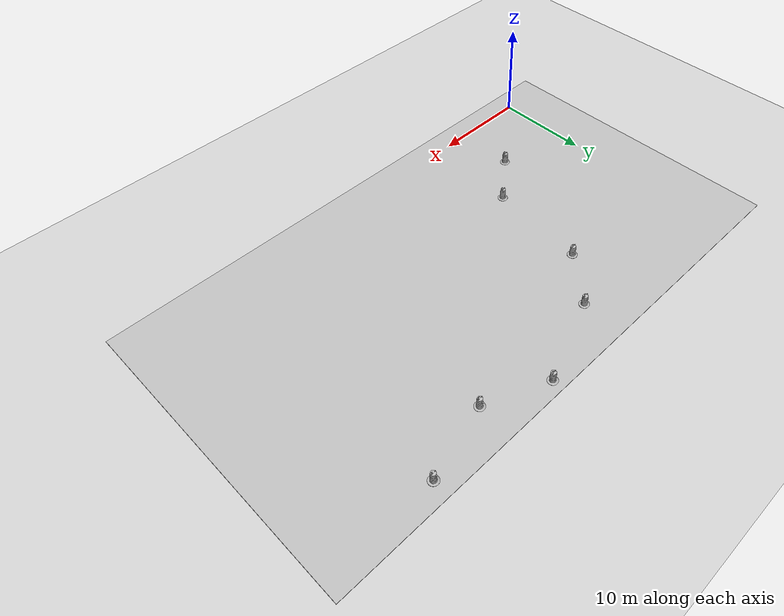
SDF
<sdf version="1.7">
 <world name="default">
  <light name="sun" type="directional">
   <pose>0 0 10 0 -0 0</pose>
   <diffuse>0.8 0.8 0.8 1</diffuse>
   <specular>0.2 0.2 0.2 1</specular>
   <attenuation>
    <range>1000</range>
    <constant>0.9</constant>
    <linear>0.01</linear>
    <quadratic>0.001</quadratic>
   </attenuation>
   <direction>-0.5 0.1 -0.9</direction>
   <spot><inner_angle>0</inner_angle><outer_angle>0</outer_angle><falloff>0</falloff></spot>
  </light>
  <model name="ground_plane">
   <static>1</static>
   <link name="link">
    <collision name="collision">
     <geometry><plane><normal>0 0 1</normal><size>100 100</size></plane></geometry>
     <surface>
      <contact><collide_bitmask>65535</collide_bitmask></contact>
      <friction><ode><mu>100</mu><mu2>50</mu2></ode></friction>
     </surface>
    </collision>
    <visual name="visual">
     <cast_shadows>0</cast_shadows>
     <geometry><plane><normal>0 0 1</normal><size>100 100</size></plane></geometry>
     <material>
      <script><uri>file://media/materials/scripts/gazebo.material</uri><name>Gazebo/Grey</name></script>
     </material>
    </visual>
   </link>
  </model>
  <gravity>0 0 -9.8</gravity>
  <magnetic_field>6e-06 2.3e-05 -4.2e-05</magnetic_field>
  <atmosphere type="adiabatic"/>
  <physics type="ode">
   <max_step_size>0.001</max_step_size>
   <real_time_factor>1</real_time_factor>
   <real_time_update_rate>1000</real_time_update_rate>
  </physics>
  <scene><ambient>0.4 0.4 0.4 1</ambient><background>0.7 0.7 0.7 1</background><shadows>1</shadows></scene>
  <spherical_coordinates>
   <surface_model>EARTH_WGS84</surface_model>
   <latitude_deg>0</latitude_deg>
   <longitude_deg>0</longitude_deg>
   <elevation>0</elevation>
   <heading_deg>0</heading_deg>
  </spherical_coordinates>
  <model name="igvc_track5">
   <static>1</static>
   <link name="link">
    <collision name="collision"><geometry><box><size>55.5585 31.5847 0.05</size></box></geometry></collision>
    <visual name="visual">
     <cast_shadows>0</cast_shadows>
     <geometry><box><size>55.5585 31.5847 0.05</size></box></geometry>
     <material>
      <script>
       <uri>model://igvc_track5/materials/scripts</uri>
       <uri>model://igvc_track5/materials/textures</uri>
       <name>vrc/ground</name>
      </script>
     </material>
    </visual>
   </link>
   <link name="link2">
    <collision name="collision"><geometry><box><size>55.5585 31.5847 0.05</size></box></geometry></collision>
    <visual name="visual">
     <cast_shadows>0</cast_shadows>
     <geometry><box><size>55.5585 31.5847 0.07</size></box></geometry>
     <material>
      <script>
       <uri>model://igvc_track5/materials/scripts</uri>
       <uri>model://igvc_track5/materials/textures</uri>
       <name>vrc/track</name>
      </script>
     </material>
    </visual>
   </link>
   <pose>22.3416 13.5576 0 0 -0 0</pose>
  </model>
  <model name="Construction Barrel">
   <link name="link">
    <inertial>
     <pose>0 0 0.4 0 -0 0</pose>
     <mass>500</mass>
     <inertia><ixx>51.2096</ixx><iyy>51.2096</iyy><izz>25</izz><ixy>0</ixy><ixz>0</ixz><iyz>0</iyz></inertia>
    </inertial>
    <collision name="collision">
     <geometry><mesh><uri>model://construction_barrel/meshes/construction_barrel.dae</uri></mesh></geometry>
    </collision>
    <visual name="visual">
     <geometry><mesh><uri>model://construction_barrel/meshes/construction_barrel.dae</uri></mesh></geometry>
    </visual>
   </link>
   <pose>39.1474 27.5429 0.024999 3e-06 -0 3.2e-05</pose>
  </model>
  <model name="Construction Barrel_0">
   <link name="link">
    <inertial>
     <pose>0 0 0.4 0 -0 0</pose>
     <mass>500</mass>
     <inertia><ixx>51.2096</ixx><iyy>51.2096</iyy><izz>25</izz><ixy>0</ixy><ixz>0</ixz><iyz>0</iyz></inertia>
    </inertial>
    <collision name="collision">
     <geometry><mesh><uri>model://construction_barrel/meshes/construction_barrel.dae</uri></mesh></geometry>
    </collision>
    <visual name="visual">
     <geometry><mesh><uri>model://construction_barrel/meshes/construction_barrel.dae</uri></mesh></geometry>
    </visual>
   </link>
   <pose>17.4169 24.8707 0.025 2e-06 -0 9e-06</pose>
  </model>
  <model name="Construction Barrel_1">
   <link name="link">
    <inertial>
     <pose>0 0 0.4 0 -0 0</pose>
     <mass>500</mass>
     <inertia><ixx>51.2096</ixx><iyy>51.2096</iyy><izz>25</izz><ixy>0</ixy><ixz>0</ixz><iyz>0</iyz></inertia>
    </inertial>
    <collision name="collision">
     <geometry><mesh><uri>model://construction_barrel/meshes/construction_barrel.dae</uri></mesh></geometry>
    </collision>
    <visual name="visual">
     <geometry><mesh><uri>model://construction_barrel/meshes/construction_barrel.dae</uri></mesh></geometry>
    </visual>
   </link>
   <pose>31.9548 25.5415 0.024999 -1e-06 -2e-06 -0.001487</pose>
  </model>
  <model name="Construction Barrel_2">
   <link name="link">
    <inertial>
     <pose>0 0 0.4 0 -0 0</pose>
     <mass>500</mass>
     <inertia><ixx>51.2096</ixx><iyy>51.2096</iyy><izz>25</izz><ixy>0</ixy><ixz>0</ixz><iyz>0</iyz></inertia>
    </inertial>
    <collision name="collision">
     <geometry><mesh><uri>model://construction_barrel/meshes/construction_barrel.dae</uri></mesh></geometry>
    </collision>
    <visual name="visual">
     <geometry><mesh><uri>model://construction_barrel/meshes/construction_barrel.dae</uri></mesh></geometry>
    </visual>
   </link>
   <pose>25.8121 28.1591 0.024999 4e-06 1e-06 6e-06</pose>
  </model>
  <model name="Construction Barrel_3">
   <link name="link">
    <inertial>
     <pose>0 0 0.4 0 -0 0</pose>
     <mass>500</mass>
     <inertia><ixx>51.2096</ixx><iyy>51.2096</iyy><izz>25</izz><ixy>0</ixy><ixz>0</ixz><iyz>0</iyz></inertia>
    </inertial>
    <collision name="collision">
     <geometry><mesh><uri>model://construction_barrel/meshes/construction_barrel.dae</uri></mesh></geometry>
    </collision>
    <visual name="visual">
     <geometry><mesh><uri>model://construction_barrel/meshes/construction_barrel.dae</uri></mesh></geometry>
    </visual>
   </link>
   <pose>13.3409 20.2013 0.025 2e-06 0 -5e-06</pose>
  </model>
  <model name="Construction Barrel_4">
   <link name="link">
    <inertial>
     <pose>0 0 0.4 0 -0 0</pose>
     <mass>500</mass>
     <inertia><ixx>51.2096</ixx><iyy>51.2096</iyy><izz>25</izz><ixy>0</ixy><ixz>0</ixz><iyz>0</iyz></inertia>
    </inertial>
    <collision name="collision">
     <geometry><mesh><uri>model://construction_barrel/meshes/construction_barrel.dae</uri></mesh></geometry>
    </collision>
    <visual name="visual">
     <geometry><mesh><uri>model://construction_barrel/meshes/construction_barrel.dae</uri></mesh></geometry>
    </visual>
   </link>
   <pose>12.0677 9.97647 0.024999 2e-06 0 -2e-06</pose>
  </model>
  <model name="Construction Barrel_5">
   <link name="link">
    <inertial>
     <pose>0 0 0.4 0 -0 0</pose>
     <mass>500</mass>
     <inertia><ixx>51.2096</ixx><iyy>51.2096</iyy><izz>25</izz><ixy>0</ixy><ixz>0</ixz><iyz>0</iyz></inertia>
    </inertial>
    <collision name="collision">
     <geometry><mesh><uri>model://construction_barrel/meshes/construction_barrel.dae</uri></mesh></geometry>
    </collision>
    <visual name="visual">
     <geometry><mesh><uri>model://construction_barrel/meshes/construction_barrel.dae</uri></mesh></geometry>
    </visual>
   </link>
   <pose>7.6678 6.28271 0.024999 -1e-06 -2e-06 0</pose>
  </model>
 </world>
</sdf>
